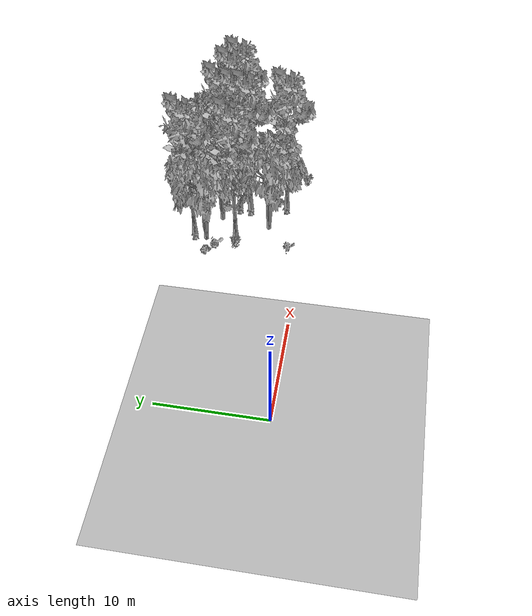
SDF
<sdf version="1.7">
 <world name="default">
  <model name="ground_plane">
   <static>1</static>
   <link name="link">
    <collision name="collision">
     <pose>-50 0 0 0 -0 0</pose>
     <geometry><plane><normal>0 0 1</normal><size>80 80</size></plane></geometry>
     <surface><contact><ode><min_depth>0.01</min_depth><max_vel>0</max_vel></ode></contact></surface>
    </collision>
    <visual name="grass">
     <cast_shadows>0</cast_shadows>
     <geometry>
      <mesh>
       <scale>0.46714285714285714 0.46714285714285714 0.1</scale>
       <uri>file://grass_plane/meshes/grass_plane.dae</uri>
      </mesh>
     </geometry>
    </visual>
   </link>
  </model>
  <model name="Tree 11">
   <static>1</static>
   <pose>23.777491336136784 6.949107803465331 0 1.57079 -0 0</pose>
   <link name="link">
    <collision name="collision">
     <geometry><mesh><scale>3.5 5 3.5</scale><uri>model://tree_9/meshes/tree_9.obj</uri></mesh></geometry>
    </collision>
    <visual name="visual">
     <geometry><mesh><scale>3.5 5 3.5</scale><uri>model://tree_9/meshes/tree_9.obj</uri></mesh></geometry>
    </visual>
   </link>
  </model>
  <model name="Tree 61">
   <static>1</static>
   <pose>19.714128663647656 6.648789212033499 0 1.57079 -0 0</pose>
   <link name="link">
    <collision name="collision">
     <geometry><mesh><scale>3.5 5 3.5</scale><uri>model://tree_9/meshes/tree_9.obj</uri></mesh></geometry>
    </collision>
    <visual name="visual">
     <geometry><mesh><scale>3.5 5 3.5</scale><uri>model://tree_9/meshes/tree_9.obj</uri></mesh></geometry>
    </visual>
   </link>
  </model>
  <model name="Tree 97">
   <static>1</static>
   <pose>24.421120729520027 8.418395513536524 0 1.57079 -0 0</pose>
   <link name="link">
    <collision name="collision">
     <geometry><mesh><scale>3.5 5 3.5</scale><uri>model://tree_9/meshes/tree_9.obj</uri></mesh></geometry>
    </collision>
    <visual name="visual">
     <geometry><mesh><scale>3.5 5 3.5</scale><uri>model://tree_9/meshes/tree_9.obj</uri></mesh></geometry>
    </visual>
   </link>
  </model>
  <model name="Tree 103">
   <static>1</static>
   <pose>21.885189371522138 8.378441648329357 0 1.57079 -0 0</pose>
   <link name="link">
    <collision name="collision">
     <geometry><mesh><scale>3.5 5 3.5</scale><uri>model://tree_2/meshes/tree_2.obj</uri></mesh></geometry>
    </collision>
    <visual name="visual">
     <geometry><mesh><scale>3.5 5 3.5</scale><uri>model://tree_2/meshes/tree_2.obj</uri></mesh></geometry>
    </visual>
   </link>
  </model>
  <model name="Tree 151">
   <static>1</static>
   <pose>25.905398536735277 10.626971701003143 0 1.57079 -0 0</pose>
   <link name="link">
    <collision name="collision">
     <geometry><mesh><scale>3.5 5 3.5</scale><uri>model://tree_2/meshes/tree_2.obj</uri></mesh></geometry>
    </collision>
    <visual name="visual">
     <geometry><mesh><scale>3.5 5 3.5</scale><uri>model://tree_2/meshes/tree_2.obj</uri></mesh></geometry>
    </visual>
   </link>
  </model>
  <model name="Tree 239">
   <static>1</static>
   <pose>18.984314039631833 9.442237275796302 0 1.57079 -0 0</pose>
   <link name="link">
    <collision name="collision">
     <geometry><mesh><scale>3.5 5 3.5</scale><uri>model://tree_2/meshes/tree_2.obj</uri></mesh></geometry>
    </collision>
    <visual name="visual">
     <geometry><mesh><scale>3.5 5 3.5</scale><uri>model://tree_2/meshes/tree_2.obj</uri></mesh></geometry>
    </visual>
   </link>
  </model>
  <model name="Tree 295">
   <static>1</static>
   <pose>28.437074083074904 7.220167008722775 0 1.57079 -0 0</pose>
   <link name="link">
    <collision name="collision">
     <geometry><mesh><scale>3.5 5 3.5</scale><uri>model://tree_9/meshes/tree_9.obj</uri></mesh></geometry>
    </collision>
    <visual name="visual">
     <geometry><mesh><scale>3.5 5 3.5</scale><uri>model://tree_9/meshes/tree_9.obj</uri></mesh></geometry>
    </visual>
   </link>
  </model>
  <model name="Tree 350">
   <static>1</static>
   <pose>23.721431515240596 5.839983725161453 0 1.57079 -0 0</pose>
   <link name="link">
    <collision name="collision">
     <geometry><mesh><scale>3.5 5 3.5</scale><uri>model://tree_9/meshes/tree_9.obj</uri></mesh></geometry>
    </collision>
    <visual name="visual">
     <geometry><mesh><scale>3.5 5 3.5</scale><uri>model://tree_9/meshes/tree_9.obj</uri></mesh></geometry>
    </visual>
   </link>
  </model>
  <model name="Tree 490">
   <static>1</static>
   <pose>21.317574129243944 3.601633576057857 0 1.57079 -0 0</pose>
   <link name="link">
    <collision name="collision">
     <geometry><mesh><scale>3.5 5 3.5</scale><uri>model://tree_2/meshes/tree_2.obj</uri></mesh></geometry>
    </collision>
    <visual name="visual">
     <geometry><mesh><scale>3.5 5 3.5</scale><uri>model://tree_2/meshes/tree_2.obj</uri></mesh></geometry>
    </visual>
   </link>
  </model>
  <model name="Tree 509">
   <static>1</static>
   <pose>19.580681459066028 10.720410327319726 0 1.57079 -0 0</pose>
   <link name="link">
    <collision name="collision">
     <geometry><mesh><scale>3.5 5 3.5</scale><uri>model://tree_9/meshes/tree_9.obj</uri></mesh></geometry>
    </collision>
    <visual name="visual">
     <geometry><mesh><scale>3.5 5 3.5</scale><uri>model://tree_9/meshes/tree_9.obj</uri></mesh></geometry>
    </visual>
   </link>
  </model>
  <model name="Tree 594">
   <static>1</static>
   <pose>24.513809350595828 2.26764984248841 0 1.57079 -0 0</pose>
   <link name="link">
    <collision name="collision">
     <geometry><mesh><scale>3.5 5 3.5</scale><uri>model://tree_9/meshes/tree_9.obj</uri></mesh></geometry>
    </collision>
    <visual name="visual">
     <geometry><mesh><scale>3.5 5 3.5</scale><uri>model://tree_9/meshes/tree_9.obj</uri></mesh></geometry>
    </visual>
   </link>
  </model>
  <model name="Tree 610">
   <static>1</static>
   <pose>26.859368158570987 7.797427259437612 0 1.57079 -0 0</pose>
   <link name="link">
    <collision name="collision">
     <geometry><mesh><scale>3.5 5 3.5</scale><uri>model://tree_9/meshes/tree_9.obj</uri></mesh></geometry>
    </collision>
    <visual name="visual">
     <geometry><mesh><scale>3.5 5 3.5</scale><uri>model://tree_9/meshes/tree_9.obj</uri></mesh></geometry>
    </visual>
   </link>
  </model>
  <model name="Bush 7">
   <static>1</static>
   <pose>24.02630071237116 6.767661556366342 0 1.57079 -0 0</pose>
   <link name="link">
    <collision name="collision">
     <geometry><mesh><scale>2 2 2</scale><uri>model://bush_5/meshes/bush_5.obj</uri></mesh></geometry>
     <surface><contact><collide_without_contact>false</collide_without_contact></contact></surface>
    </collision>
    <visual name="visual">
     <geometry><mesh><scale>2 2 2</scale><uri>model://bush_5/meshes/bush_5.obj</uri></mesh></geometry>
    </visual>
   </link>
  </model>
  <model name="Bush 40">
   <static>1</static>
   <pose>18.370270492050437 1.4183178090556794 0 1.57079 -0 0</pose>
   <link name="link">
    <collision name="collision">
     <geometry><mesh><scale>2 2 2</scale><uri>model://bush_5/meshes/bush_5.obj</uri></mesh></geometry>
     <surface><contact><collide_without_contact>false</collide_without_contact></contact></surface>
    </collision>
    <visual name="visual">
     <geometry><mesh><scale>2 2 2</scale><uri>model://bush_5/meshes/bush_5.obj</uri></mesh></geometry>
    </visual>
   </link>
  </model>
  <model name="Bush 63">
   <static>1</static>
   <pose>28.157254795543366 0.5778447852390372 0 1.57079 -0 0</pose>
   <link name="link">
    <collision name="collision">
     <geometry><mesh><scale>2 2 2</scale><uri>model://bush_4/meshes/bush_4.obj</uri></mesh></geometry>
     <surface><contact><collide_without_contact>false</collide_without_contact></contact></surface>
    </collision>
    <visual name="visual">
     <geometry><mesh><scale>2 2 2</scale><uri>model://bush_4/meshes/bush_4.obj</uri></mesh></geometry>
    </visual>
   </link>
  </model>
  <model name="Bush 145">
   <static>1</static>
   <pose>18.47134886868662 6.399406496447085 0 1.57079 -0 0</pose>
   <link name="link">
    <collision name="collision">
     <geometry><mesh><scale>2 2 2</scale><uri>model://bush_4/meshes/bush_4.obj</uri></mesh></geometry>
     <surface><contact><collide_without_contact>false</collide_without_contact></contact></surface>
    </collision>
    <visual name="visual">
     <geometry><mesh><scale>2 2 2</scale><uri>model://bush_4/meshes/bush_4.obj</uri></mesh></geometry>
    </visual>
   </link>
  </model>
  <model name="Bush 189">
   <static>1</static>
   <pose>25.01652239628826 2.996672548082728 0 1.57079 -0 0</pose>
   <link name="link">
    <collision name="collision">
     <geometry><mesh><scale>2 2 2</scale><uri>model://bush_2/meshes/bush_2.obj</uri></mesh></geometry>
     <surface><contact><collide_without_contact>false</collide_without_contact></contact></surface>
    </collision>
    <visual name="visual">
     <geometry><mesh><scale>2 2 2</scale><uri>model://bush_2/meshes/bush_2.obj</uri></mesh></geometry>
    </visual>
   </link>
  </model>
  <model name="Bush 399">
   <static>1</static>
   <pose>17.95791387693629 8.344307883921608 0 1.57079 -0 0</pose>
   <link name="link">
    <collision name="collision">
     <geometry><mesh><scale>2 2 2</scale><uri>model://bush_0/meshes/bush_0.obj</uri></mesh></geometry>
     <surface><contact><collide_without_contact>false</collide_without_contact></contact></surface>
    </collision>
    <visual name="visual">
     <geometry><mesh><scale>2 2 2</scale><uri>model://bush_0/meshes/bush_0.obj</uri></mesh></geometry>
    </visual>
   </link>
  </model>
  <model name="Bush 464">
   <static>1</static>
   <pose>26.009472895344572 4.4447539342023745 0 1.57079 -0 0</pose>
   <link name="link">
    <collision name="collision">
     <geometry><mesh><scale>2 2 2</scale><uri>model://bush_4/meshes/bush_4.obj</uri></mesh></geometry>
     <surface><contact><collide_without_contact>false</collide_without_contact></contact></surface>
    </collision>
    <visual name="visual">
     <geometry><mesh><scale>2 2 2</scale><uri>model://bush_4/meshes/bush_4.obj</uri></mesh></geometry>
    </visual>
   </link>
  </model>
  <model name="Bush 502">
   <static>1</static>
   <pose>27.34965467621464 2.223229994151879 0 1.57079 -0 0</pose>
   <link name="link">
    <collision name="collision">
     <geometry><mesh><scale>2 2 2</scale><uri>model://bush_2/meshes/bush_2.obj</uri></mesh></geometry>
     <surface><contact><collide_without_contact>false</collide_without_contact></contact></surface>
    </collision>
    <visual name="visual">
     <geometry><mesh><scale>2 2 2</scale><uri>model://bush_2/meshes/bush_2.obj</uri></mesh></geometry>
    </visual>
   </link>
  </model>
  <model name="Bush 519">
   <static>1</static>
   <pose>27.99985413620992 9.215222563752647 0 1.57079 -0 0</pose>
   <link name="link">
    <collision name="collision">
     <geometry><mesh><scale>2 2 2</scale><uri>model://bush_2/meshes/bush_2.obj</uri></mesh></geometry>
     <surface><contact><collide_without_contact>false</collide_without_contact></contact></surface>
    </collision>
    <visual name="visual">
     <geometry><mesh><scale>2 2 2</scale><uri>model://bush_2/meshes/bush_2.obj</uri></mesh></geometry>
    </visual>
   </link>
  </model>
  <model name="Bush 571">
   <static>1</static>
   <pose>24.688601547502685 3.5558012589719183 0 1.57079 -0 0</pose>
   <link name="link">
    <collision name="collision">
     <geometry><mesh><scale>2 2 2</scale><uri>model://bush_2/meshes/bush_2.obj</uri></mesh></geometry>
     <surface><contact><collide_without_contact>false</collide_without_contact></contact></surface>
    </collision>
    <visual name="visual">
     <geometry><mesh><scale>2 2 2</scale><uri>model://bush_2/meshes/bush_2.obj</uri></mesh></geometry>
    </visual>
   </link>
  </model>
  <model name="Bush 605">
   <static>1</static>
   <pose>17.554756186880446 9.237141069538488 0 1.57079 -0 0</pose>
   <link name="link">
    <collision name="collision">
     <geometry><mesh><scale>2 2 2</scale><uri>model://bush_2/meshes/bush_2.obj</uri></mesh></geometry>
     <surface><contact><collide_without_contact>false</collide_without_contact></contact></surface>
    </collision>
    <visual name="visual">
     <geometry><mesh><scale>2 2 2</scale><uri>model://bush_2/meshes/bush_2.obj</uri></mesh></geometry>
    </visual>
   </link>
  </model>
 </world>
</sdf>
